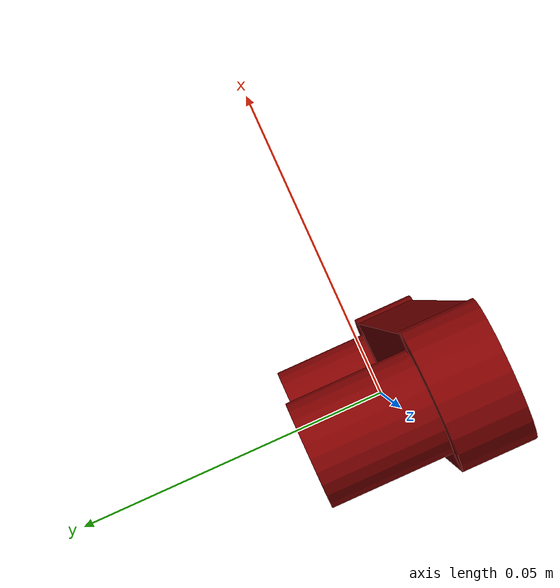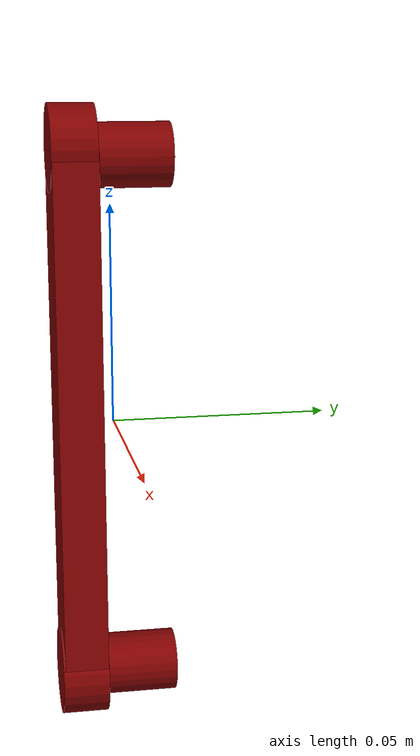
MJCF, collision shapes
<?xml version='1.0' encoding='UTF-8'?>
<mujoco model="model">
  <option timestep="0.002" gravity="0.0 0.0 -9.81"/>
  <compiler angle="radian"/>
  <asset>
    <mesh file="visuals/CabinetHandle048.obj" name="CabinetHandle048_vis"/>
    <texture file="visuals/T_BC001.png" name="tex" type="2d"/>
    <material name="mat" rgba="1 1 1 1.0" texture="tex" shininess="0.4472135901451111" specular="0.3103448502657381"/>
  </asset>
  <default>
    <default class="visual">
      <geom conaffinity="0" contype="0" group="1" type="mesh"/>
    </default>
    <default class="collision">
      <geom group="0" rgba="0.5 0 0 0.5" density="1.0" solref="0.004 1" solimp="0.998 0.998 0.001"/>
    </default>
    <default class="spawn">
      <geom group="0" rgba="1 1 1 0.5" contype="0" conaffinity="0"/>
      <site group="0" rgba="1 1 1 0.5"/>
    </default>
    <default class="region">
      <geom group="1" conaffinity="0" contype="0" rgba="0 1 0 0" mass="0"/>
    </default>
  </default>
  <worldbody>
    <body>
      <body name="object">
        <geom mesh="CabinetHandle048_vis" type="mesh" solimp="0.998 0.998 0.001" solref="0.001 1" friction="0.95 0.3 0.1" class="visual" material="mat"/>
        <geom type="cylinder" pos="-1.3060257911468085e-17 0.005035910755395889 0.060754481703042984" size="0.007290619891136885 0.008538726717233658" quat="0.7071067094802856 0.7071068286895752 0.0 0.0" class="collision"/>
        <geom type="cylinder" pos="-1.3060257911468085e-17 0.005035910755395889 -0.060692597180604935" size="0.007290619891136885 0.008538726717233658" quat="0.7071067094802856 0.7071068286895752 0.0 0.0" class="collision"/>
        <geom type="cylinder" pos="-1.3036075286260097e-17 -0.00846607331186533 0.062452998012304306" size="0.009798000566661358 0.005153166130185127" quat="0.7071067094802856 0.7071068286895752 0.0 0.0" class="collision"/>
        <geom type="cylinder" pos="-1.3036075286260097e-17 -0.008466074243187904 -0.061678048223257065" size="0.01024604495614767 0.005393791478127241" quat="0.7071067690849304 0.7071067690849304 0.0 0.0" class="collision"/>
        <geom type="box" pos="0.0 -0.008329329080879688 0.0" size="0.009493873454630375 0.005129847209900618 0.06291710585355759" quat="1.0 0.0 0.0 0.0" class="collision"/>
        <geom class="region" name="reg_main" type="box" pos="0.0 0.0 0.0" size="0.010284948930144311 0.014619238510727883 0.07200442051887512"/>
      </body>
    </body>
  </worldbody>
  <actuator/>
</mujoco>
